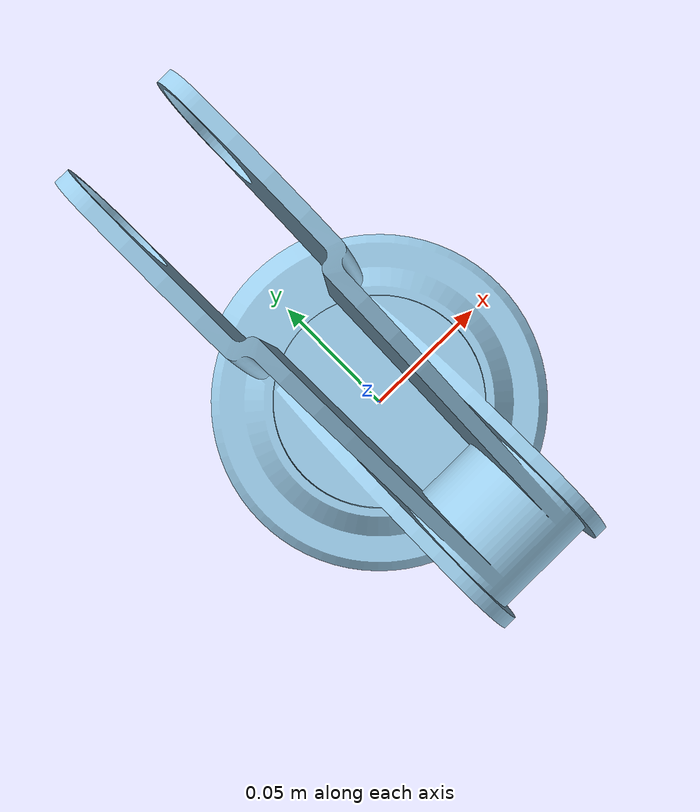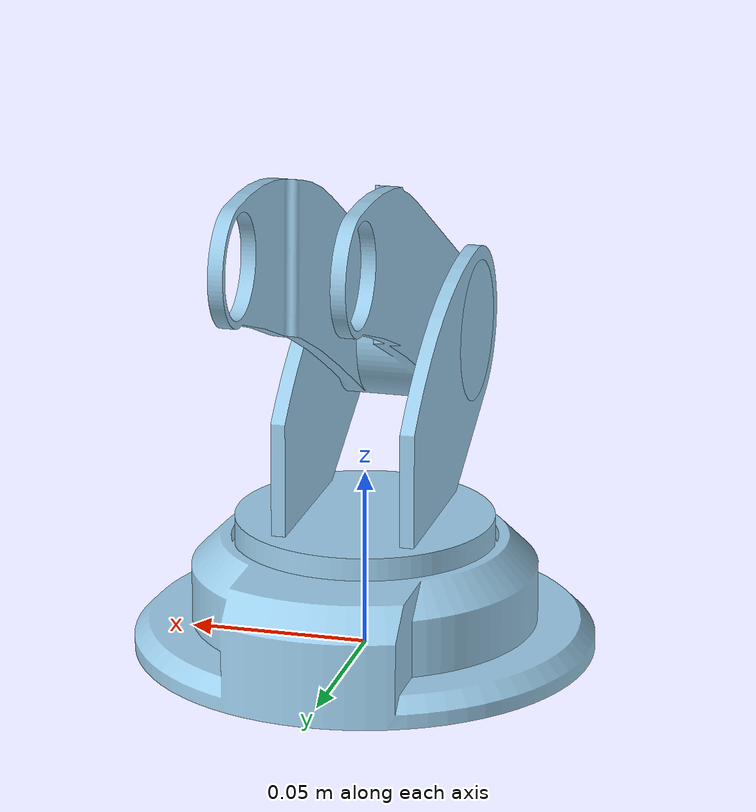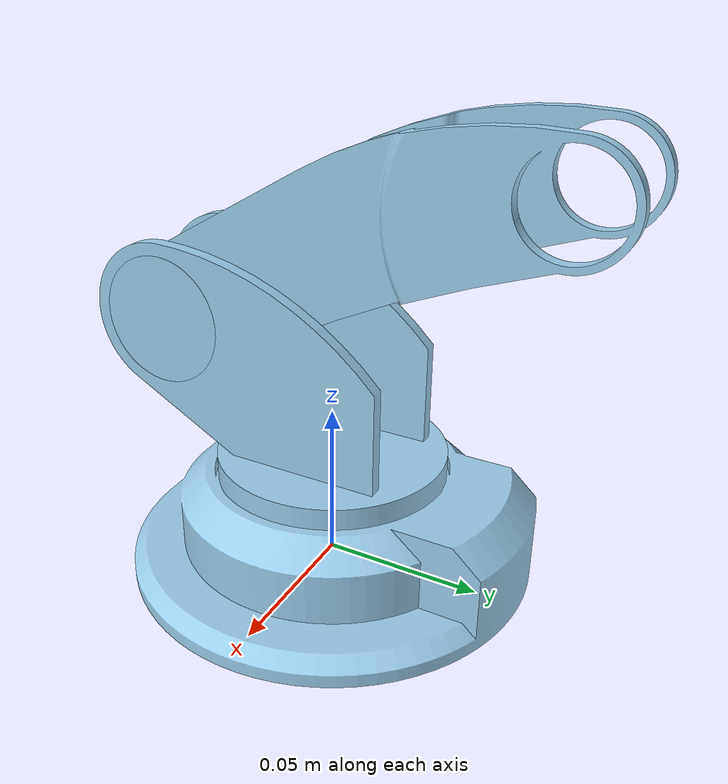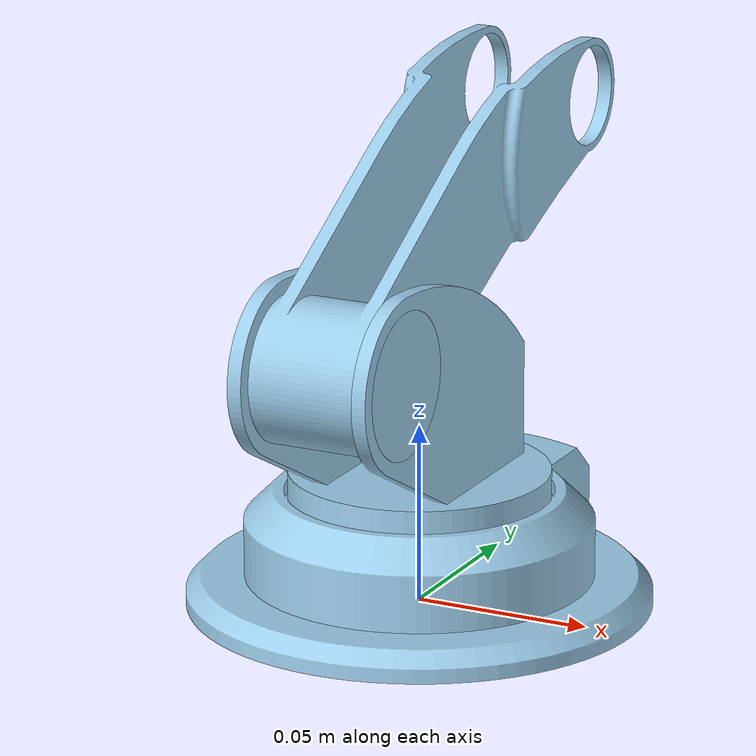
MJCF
<?xml version="1.0" ?>
<!-- Generated using onshape-to-robot -->
<!-- Onshape https://cad.onshape.com/documents/d7eef6374aced10980d655e0/w/a95c1ea2fcec3b2e30db9b5b/e/e929eb8ea27c778bb70e0c8e -->
<mujoco model="arm-v2">
  <compiler angle="radian" meshdir="assets" autolimits="true"/>
  <default>
    <default class="arm-v2">
      <joint frictionloss="0.1" armature="0.005"/>
      <position kp="50" dampratio="1"/>
      <default class="visual">
        <geom type="mesh" contype="0" conaffinity="0" group="2"/>
      </default>
      <default class="collision">
        <geom group="3"/>
      </default>
    </default>
  </default>
  <worldbody>
    <!-- Link base -->
    <body name="base" pos="0 0 0" quat="1 0 0 0" childclass="arm-v2">
      <inertial pos="0 0.00388636 0.0129496" mass="0.331827" fullinertia="0.000318825 0.000259631 0.000528752 0 0 -8.40424e-06"/>
      <!-- Part base -->
      <geom type="mesh" class="visual" pos="0 0 0" quat="1 0 0 0" mesh="base" material="base_material"/>
      <geom type="mesh" class="collision" pos="0 0 0" quat="1 0 0 0" mesh="base" material="base_material"/>
      <!-- Link seg1 -->
      <body name="seg1" pos="0 0 0.028" quat="-0 -1 0 0">
        <!-- Joint from base to seg1 -->
        <joint axis="0 0 1" name="base" type="hinge" range="-1.5707963267948966 1.5707963267948966"/>
        <inertial pos="-0 0.00623987 -0.0202701" mass="0.0748252" fullinertia="6.19727e-05 5.24779e-05 5.79472e-05 -0 0 1.17384e-05"/>
        <!-- Part seg1 -->
        <geom type="mesh" class="visual" pos="-0 0 -0.002" quat="0 1 0 0" mesh="seg1" material="seg1_material"/>
        <geom type="mesh" class="collision" pos="-0 0 -0.002" quat="0 1 0 0" mesh="seg1" material="seg1_material"/>
        <!-- Link seg2 -->
        <body name="seg2" pos="0.02 0.048 -0.05" quat="0.5 0.5 -0.5 -0.5">
          <!-- Joint from seg1 to seg2 -->
          <joint axis="0 0 1" name="shoulder" type="hinge" range="-2.687807048071267 0.5235987755982996"/>
          <inertial pos="0.0259241 -0.0137918 0.02" mass="0.108178" fullinertia="6.43247e-05 0.000161173 0.000192018 6.76584e-05 -6e-12 3e-12"/>
          <!-- Part seg2 -->
          <geom type="mesh" class="visual" pos="0 -0 0.02" quat="0.683013 0.183013 0.683013 -0.183013" mesh="seg2" material="seg2_material"/>
          <geom type="mesh" class="collision" pos="0 -0 0.02" quat="0.683013 0.183013 0.683013 -0.183013" mesh="seg2" material="seg2_material"/>
        </body>
      </body>
    </body>
  </worldbody>
  <asset>
    <mesh file="base.stl"/>
    <mesh file="seg2.stl"/>
    <mesh file="seg1.stl"/>
    <material name="base_material" rgba="0.615686 0.811765 0.929412 1"/>
    <material name="seg1_material" rgba="0.615686 0.811765 0.929412 1"/>
    <material name="seg2_material" rgba="0.615686 0.811765 0.929412 1"/>
  </asset>
  <actuator>
    <position class="arm-v2" name="base" joint="base" inheritrange="1"/>
    <position class="arm-v2" name="shoulder" joint="shoulder" inheritrange="1"/>
  </actuator>
  <equality/>
</mujoco>
